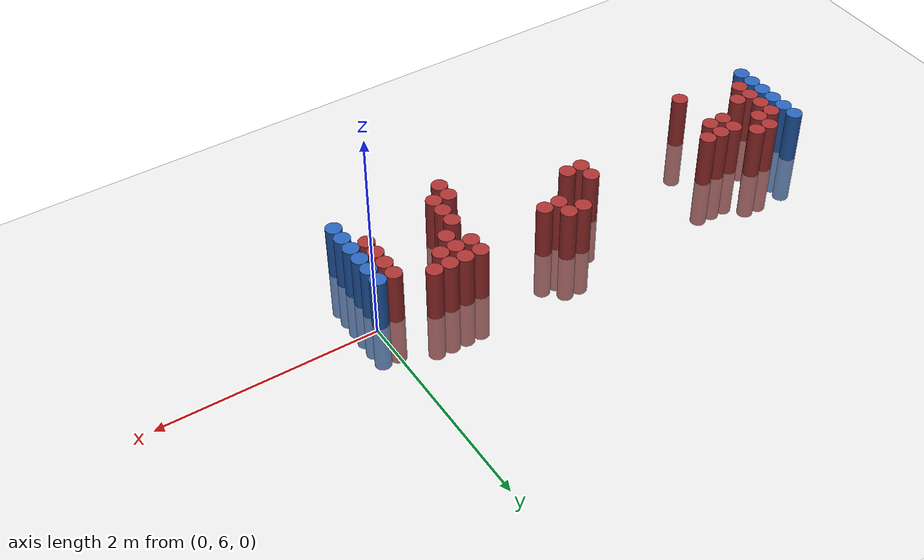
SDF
<sdf version="1.6">
 <world name="default">
  <model name="ground_plane">
   <static>1</static>
   <link name="link">
    <collision name="collision">
     <geometry><plane><normal>0 0 1</normal><size>100 100</size></plane></geometry>
     <surface><friction><ode><mu>100</mu><mu2>50</mu2></ode></friction></surface>
    </collision>
    <visual name="visual">
     <cast_shadows>0</cast_shadows>
     <geometry><plane><normal>0 0 1</normal><size>100 100</size></plane></geometry>
     <material>
      <script><uri>file://media/materials/scripts/gazebo.material</uri><name>Gazebo/Grey</name></script>
     </material>
    </visual>
   </link>
  </model>
  <model name="unit_cylinder_97">
   <static>1</static>
   <pose>-4.425000 5.325000 0.000000 0.000000 0.000000 0.000000</pose>
   <link name="link">
    <inertial>
     <mass>1</mass>
     <inertia><ixx>0.145833</ixx><ixy>0</ixy><ixz>0</ixz><iyy>0.145833</iyy><iyz>0</iyz><izz>0.125</izz></inertia>
    </inertial>
    <collision name="collision">
     <geometry><cylinder><radius>0.075000</radius><length>1</length></cylinder></geometry>
    </collision>
    <visual name="visual">
     <geometry><cylinder><radius>0.075000</radius><length>1</length></cylinder></geometry>
     <material>
      <ambient>0.152000 0.379000 0.720000 1</ambient>
      <diffuse>0.152000 0.379000 0.720000 1</diffuse>
     </material>
     <material>
      <script><name>Gazebo/Grey</name><uri>file://media/materials/scripts/gazebo.material</uri></script>
     </material>
    </visual>
   </link>
  </model>
  <model name="unit_cylinder_98">
   <static>1</static>
   <pose>-4.425000 5.475000 0.000000 0.000000 0.000000 0.000000</pose>
   <link name="link">
    <inertial>
     <mass>1</mass>
     <inertia><ixx>0.145833</ixx><ixy>0</ixy><ixz>0</ixz><iyy>0.145833</iyy><iyz>0</iyz><izz>0.125</izz></inertia>
    </inertial>
    <collision name="collision">
     <geometry><cylinder><radius>0.075000</radius><length>1</length></cylinder></geometry>
    </collision>
    <visual name="visual">
     <geometry><cylinder><radius>0.075000</radius><length>1</length></cylinder></geometry>
     <material>
      <ambient>0.152000 0.379000 0.720000 1</ambient>
      <diffuse>0.152000 0.379000 0.720000 1</diffuse>
     </material>
     <material>
      <script><name>Gazebo/Grey</name><uri>file://media/materials/scripts/gazebo.material</uri></script>
     </material>
    </visual>
   </link>
  </model>
  <model name="unit_cylinder_99">
   <static>1</static>
   <pose>-4.425000 5.625000 0.000000 0.000000 0.000000 0.000000</pose>
   <link name="link">
    <inertial>
     <mass>1</mass>
     <inertia><ixx>0.145833</ixx><ixy>0</ixy><ixz>0</ixz><iyy>0.145833</iyy><iyz>0</iyz><izz>0.125</izz></inertia>
    </inertial>
    <collision name="collision">
     <geometry><cylinder><radius>0.075000</radius><length>1</length></cylinder></geometry>
    </collision>
    <visual name="visual">
     <geometry><cylinder><radius>0.075000</radius><length>1</length></cylinder></geometry>
     <material>
      <ambient>0.152000 0.379000 0.720000 1</ambient>
      <diffuse>0.152000 0.379000 0.720000 1</diffuse>
     </material>
     <material>
      <script><name>Gazebo/Grey</name><uri>file://media/materials/scripts/gazebo.material</uri></script>
     </material>
    </visual>
   </link>
  </model>
  <model name="unit_cylinder_100">
   <static>1</static>
   <pose>-4.425000 5.775000 0.000000 0.000000 0.000000 0.000000</pose>
   <link name="link">
    <inertial>
     <mass>1</mass>
     <inertia><ixx>0.145833</ixx><ixy>0</ixy><ixz>0</ixz><iyy>0.145833</iyy><iyz>0</iyz><izz>0.125</izz></inertia>
    </inertial>
    <collision name="collision">
     <geometry><cylinder><radius>0.075000</radius><length>1</length></cylinder></geometry>
    </collision>
    <visual name="visual">
     <geometry><cylinder><radius>0.075000</radius><length>1</length></cylinder></geometry>
     <material>
      <ambient>0.152000 0.379000 0.720000 1</ambient>
      <diffuse>0.152000 0.379000 0.720000 1</diffuse>
     </material>
     <material>
      <script><name>Gazebo/Grey</name><uri>file://media/materials/scripts/gazebo.material</uri></script>
     </material>
    </visual>
   </link>
  </model>
  <model name="unit_cylinder_101">
   <static>1</static>
   <pose>-4.425000 5.925000 0.000000 0.000000 0.000000 0.000000</pose>
   <link name="link">
    <inertial>
     <mass>1</mass>
     <inertia><ixx>0.145833</ixx><ixy>0</ixy><ixz>0</ixz><iyy>0.145833</iyy><iyz>0</iyz><izz>0.125</izz></inertia>
    </inertial>
    <collision name="collision">
     <geometry><cylinder><radius>0.075000</radius><length>1</length></cylinder></geometry>
    </collision>
    <visual name="visual">
     <geometry><cylinder><radius>0.075000</radius><length>1</length></cylinder></geometry>
     <material>
      <ambient>0.152000 0.379000 0.720000 1</ambient>
      <diffuse>0.152000 0.379000 0.720000 1</diffuse>
     </material>
     <material>
      <script><name>Gazebo/Grey</name><uri>file://media/materials/scripts/gazebo.material</uri></script>
     </material>
    </visual>
   </link>
  </model>
  <model name="unit_cylinder_102">
   <static>1</static>
   <pose>-4.425000 6.075000 0.000000 0.000000 0.000000 0.000000</pose>
   <link name="link">
    <inertial>
     <mass>1</mass>
     <inertia><ixx>0.145833</ixx><ixy>0</ixy><ixz>0</ixz><iyy>0.145833</iyy><iyz>0</iyz><izz>0.125</izz></inertia>
    </inertial>
    <collision name="collision">
     <geometry><cylinder><radius>0.075000</radius><length>1</length></cylinder></geometry>
    </collision>
    <visual name="visual">
     <geometry><cylinder><radius>0.075000</radius><length>1</length></cylinder></geometry>
     <material>
      <ambient>0.152000 0.379000 0.720000 1</ambient>
      <diffuse>0.152000 0.379000 0.720000 1</diffuse>
     </material>
     <material>
      <script><name>Gazebo/Grey</name><uri>file://media/materials/scripts/gazebo.material</uri></script>
     </material>
    </visual>
   </link>
  </model>
  <model name="unit_cylinder_126">
   <static>1</static>
   <pose>-4.275000 5.475000 0.000000 0.000000 0.000000 0.000000</pose>
   <link name="link">
    <inertial>
     <mass>1</mass>
     <inertia><ixx>0.145833</ixx><ixy>0</ixy><ixz>0</ixz><iyy>0.145833</iyy><iyz>0</iyz><izz>0.125</izz></inertia>
    </inertial>
    <collision name="collision">
     <geometry><cylinder><radius>0.075000</radius><length>1</length></cylinder></geometry>
    </collision>
    <visual name="visual">
     <geometry><cylinder><radius>0.075000</radius><length>1</length></cylinder></geometry>
     <material>
      <ambient>0.648000 0.192000 0.192000 1</ambient>
      <diffuse>0.648000 0.192000 0.192000 1</diffuse>
     </material>
     <material>
      <script><name>Gazebo/Grey</name><uri>file://media/materials/scripts/gazebo.material</uri></script>
     </material>
    </visual>
   </link>
  </model>
  <model name="unit_cylinder_127">
   <static>1</static>
   <pose>-4.275000 5.625000 0.000000 0.000000 0.000000 0.000000</pose>
   <link name="link">
    <inertial>
     <mass>1</mass>
     <inertia><ixx>0.145833</ixx><ixy>0</ixy><ixz>0</ixz><iyy>0.145833</iyy><iyz>0</iyz><izz>0.125</izz></inertia>
    </inertial>
    <collision name="collision">
     <geometry><cylinder><radius>0.075000</radius><length>1</length></cylinder></geometry>
    </collision>
    <visual name="visual">
     <geometry><cylinder><radius>0.075000</radius><length>1</length></cylinder></geometry>
     <material>
      <ambient>0.648000 0.192000 0.192000 1</ambient>
      <diffuse>0.648000 0.192000 0.192000 1</diffuse>
     </material>
     <material>
      <script><name>Gazebo/Grey</name><uri>file://media/materials/scripts/gazebo.material</uri></script>
     </material>
    </visual>
   </link>
  </model>
  <model name="unit_cylinder_128">
   <static>1</static>
   <pose>-4.275000 5.775000 0.000000 0.000000 0.000000 0.000000</pose>
   <link name="link">
    <inertial>
     <mass>1</mass>
     <inertia><ixx>0.145833</ixx><ixy>0</ixy><ixz>0</ixz><iyy>0.145833</iyy><iyz>0</iyz><izz>0.125</izz></inertia>
    </inertial>
    <collision name="collision">
     <geometry><cylinder><radius>0.075000</radius><length>1</length></cylinder></geometry>
    </collision>
    <visual name="visual">
     <geometry><cylinder><radius>0.075000</radius><length>1</length></cylinder></geometry>
     <material>
      <ambient>0.648000 0.192000 0.192000 1</ambient>
      <diffuse>0.648000 0.192000 0.192000 1</diffuse>
     </material>
     <material>
      <script><name>Gazebo/Grey</name><uri>file://media/materials/scripts/gazebo.material</uri></script>
     </material>
    </visual>
   </link>
  </model>
  <model name="unit_cylinder_129">
   <static>1</static>
   <pose>-4.275000 5.925000 0.000000 0.000000 0.000000 0.000000</pose>
   <link name="link">
    <inertial>
     <mass>1</mass>
     <inertia><ixx>0.145833</ixx><ixy>0</ixy><ixz>0</ixz><iyy>0.145833</iyy><iyz>0</iyz><izz>0.125</izz></inertia>
    </inertial>
    <collision name="collision">
     <geometry><cylinder><radius>0.075000</radius><length>1</length></cylinder></geometry>
    </collision>
    <visual name="visual">
     <geometry><cylinder><radius>0.075000</radius><length>1</length></cylinder></geometry>
     <material>
      <ambient>0.648000 0.192000 0.192000 1</ambient>
      <diffuse>0.648000 0.192000 0.192000 1</diffuse>
     </material>
     <material>
      <script><name>Gazebo/Grey</name><uri>file://media/materials/scripts/gazebo.material</uri></script>
     </material>
    </visual>
   </link>
  </model>
  <model name="unit_cylinder_137">
   <static>1</static>
   <pose>-4.125000 5.625000 0.000000 0.000000 0.000000 0.000000</pose>
   <link name="link">
    <inertial>
     <mass>1</mass>
     <inertia><ixx>0.145833</ixx><ixy>0</ixy><ixz>0</ixz><iyy>0.145833</iyy><iyz>0</iyz><izz>0.125</izz></inertia>
    </inertial>
    <collision name="collision">
     <geometry><cylinder><radius>0.075000</radius><length>1</length></cylinder></geometry>
    </collision>
    <visual name="visual">
     <geometry><cylinder><radius>0.075000</radius><length>1</length></cylinder></geometry>
     <material>
      <ambient>0.648000 0.192000 0.192000 1</ambient>
      <diffuse>0.648000 0.192000 0.192000 1</diffuse>
     </material>
     <material>
      <script><name>Gazebo/Grey</name><uri>file://media/materials/scripts/gazebo.material</uri></script>
     </material>
    </visual>
   </link>
  </model>
  <model name="unit_cylinder_138">
   <static>1</static>
   <pose>-4.125000 5.925000 0.000000 0.000000 0.000000 0.000000</pose>
   <link name="link">
    <inertial>
     <mass>1</mass>
     <inertia><ixx>0.145833</ixx><ixy>0</ixy><ixz>0</ixz><iyy>0.145833</iyy><iyz>0</iyz><izz>0.125</izz></inertia>
    </inertial>
    <collision name="collision">
     <geometry><cylinder><radius>0.075000</radius><length>1</length></cylinder></geometry>
    </collision>
    <visual name="visual">
     <geometry><cylinder><radius>0.075000</radius><length>1</length></cylinder></geometry>
     <material>
      <ambient>0.648000 0.192000 0.192000 1</ambient>
      <diffuse>0.648000 0.192000 0.192000 1</diffuse>
     </material>
     <material>
      <script><name>Gazebo/Grey</name><uri>file://media/materials/scripts/gazebo.material</uri></script>
     </material>
    </visual>
   </link>
  </model>
  <model name="unit_cylinder_139">
   <static>1</static>
   <pose>-4.125000 6.075000 0.000000 0.000000 0.000000 0.000000</pose>
   <link name="link">
    <inertial>
     <mass>1</mass>
     <inertia><ixx>0.145833</ixx><ixy>0</ixy><ixz>0</ixz><iyy>0.145833</iyy><iyz>0</iyz><izz>0.125</izz></inertia>
    </inertial>
    <collision name="collision">
     <geometry><cylinder><radius>0.075000</radius><length>1</length></cylinder></geometry>
    </collision>
    <visual name="visual">
     <geometry><cylinder><radius>0.075000</radius><length>1</length></cylinder></geometry>
     <material>
      <ambient>0.648000 0.192000 0.192000 1</ambient>
      <diffuse>0.648000 0.192000 0.192000 1</diffuse>
     </material>
     <material>
      <script><name>Gazebo/Grey</name><uri>file://media/materials/scripts/gazebo.material</uri></script>
     </material>
    </visual>
   </link>
  </model>
  <model name="unit_cylinder_144">
   <static>1</static>
   <pose>-3.975000 6.075000 0.000000 0.000000 0.000000 0.000000</pose>
   <link name="link">
    <inertial>
     <mass>1</mass>
     <inertia><ixx>0.145833</ixx><ixy>0</ixy><ixz>0</ixz><iyy>0.145833</iyy><iyz>0</iyz><izz>0.125</izz></inertia>
    </inertial>
    <collision name="collision">
     <geometry><cylinder><radius>0.075000</radius><length>1</length></cylinder></geometry>
    </collision>
    <visual name="visual">
     <geometry><cylinder><radius>0.075000</radius><length>1</length></cylinder></geometry>
     <material>
      <ambient>0.648000 0.192000 0.192000 1</ambient>
      <diffuse>0.648000 0.192000 0.192000 1</diffuse>
     </material>
     <material>
      <script><name>Gazebo/Grey</name><uri>file://media/materials/scripts/gazebo.material</uri></script>
     </material>
    </visual>
   </link>
  </model>
  <model name="unit_cylinder_150">
   <static>1</static>
   <pose>-3.825000 5.775000 0.000000 0.000000 0.000000 0.000000</pose>
   <link name="link">
    <inertial>
     <mass>1</mass>
     <inertia><ixx>0.145833</ixx><ixy>0</ixy><ixz>0</ixz><iyy>0.145833</iyy><iyz>0</iyz><izz>0.125</izz></inertia>
    </inertial>
    <collision name="collision">
     <geometry><cylinder><radius>0.075000</radius><length>1</length></cylinder></geometry>
    </collision>
    <visual name="visual">
     <geometry><cylinder><radius>0.075000</radius><length>1</length></cylinder></geometry>
     <material>
      <ambient>0.648000 0.192000 0.192000 1</ambient>
      <diffuse>0.648000 0.192000 0.192000 1</diffuse>
     </material>
     <material>
      <script><name>Gazebo/Grey</name><uri>file://media/materials/scripts/gazebo.material</uri></script>
     </material>
    </visual>
   </link>
  </model>
  <model name="unit_cylinder_151">
   <static>1</static>
   <pose>-3.825000 5.925000 0.000000 0.000000 0.000000 0.000000</pose>
   <link name="link">
    <inertial>
     <mass>1</mass>
     <inertia><ixx>0.145833</ixx><ixy>0</ixy><ixz>0</ixz><iyy>0.145833</iyy><iyz>0</iyz><izz>0.125</izz></inertia>
    </inertial>
    <collision name="collision">
     <geometry><cylinder><radius>0.075000</radius><length>1</length></cylinder></geometry>
    </collision>
    <visual name="visual">
     <geometry><cylinder><radius>0.075000</radius><length>1</length></cylinder></geometry>
     <material>
      <ambient>0.648000 0.192000 0.192000 1</ambient>
      <diffuse>0.648000 0.192000 0.192000 1</diffuse>
     </material>
     <material>
      <script><name>Gazebo/Grey</name><uri>file://media/materials/scripts/gazebo.material</uri></script>
     </material>
    </visual>
   </link>
  </model>
  <model name="unit_cylinder_161">
   <static>1</static>
   <pose>-3.675000 5.325000 0.000000 0.000000 0.000000 0.000000</pose>
   <link name="link">
    <inertial>
     <mass>1</mass>
     <inertia><ixx>0.145833</ixx><ixy>0</ixy><ixz>0</ixz><iyy>0.145833</iyy><iyz>0</iyz><izz>0.125</izz></inertia>
    </inertial>
    <collision name="collision">
     <geometry><cylinder><radius>0.075000</radius><length>1</length></cylinder></geometry>
    </collision>
    <visual name="visual">
     <geometry><cylinder><radius>0.075000</radius><length>1</length></cylinder></geometry>
     <material>
      <ambient>0.648000 0.192000 0.192000 1</ambient>
      <diffuse>0.648000 0.192000 0.192000 1</diffuse>
     </material>
     <material>
      <script><name>Gazebo/Grey</name><uri>file://media/materials/scripts/gazebo.material</uri></script>
     </material>
    </visual>
   </link>
  </model>
  <model name="unit_cylinder_162">
   <static>1</static>
   <pose>-3.675000 5.775000 0.000000 0.000000 0.000000 0.000000</pose>
   <link name="link">
    <inertial>
     <mass>1</mass>
     <inertia><ixx>0.145833</ixx><ixy>0</ixy><ixz>0</ixz><iyy>0.145833</iyy><iyz>0</iyz><izz>0.125</izz></inertia>
    </inertial>
    <collision name="collision">
     <geometry><cylinder><radius>0.075000</radius><length>1</length></cylinder></geometry>
    </collision>
    <visual name="visual">
     <geometry><cylinder><radius>0.075000</radius><length>1</length></cylinder></geometry>
     <material>
      <ambient>0.648000 0.192000 0.192000 1</ambient>
      <diffuse>0.648000 0.192000 0.192000 1</diffuse>
     </material>
     <material>
      <script><name>Gazebo/Grey</name><uri>file://media/materials/scripts/gazebo.material</uri></script>
     </material>
    </visual>
   </link>
  </model>
  <model name="unit_cylinder_163">
   <static>1</static>
   <pose>-3.675000 5.925000 0.000000 0.000000 0.000000 0.000000</pose>
   <link name="link">
    <inertial>
     <mass>1</mass>
     <inertia><ixx>0.145833</ixx><ixy>0</ixy><ixz>0</ixz><iyy>0.145833</iyy><iyz>0</iyz><izz>0.125</izz></inertia>
    </inertial>
    <collision name="collision">
     <geometry><cylinder><radius>0.075000</radius><length>1</length></cylinder></geometry>
    </collision>
    <visual name="visual">
     <geometry><cylinder><radius>0.075000</radius><length>1</length></cylinder></geometry>
     <material>
      <ambient>0.648000 0.192000 0.192000 1</ambient>
      <diffuse>0.648000 0.192000 0.192000 1</diffuse>
     </material>
     <material>
      <script><name>Gazebo/Grey</name><uri>file://media/materials/scripts/gazebo.material</uri></script>
     </material>
    </visual>
   </link>
  </model>
  <model name="unit_cylinder_170">
   <static>1</static>
   <pose>-3.525000 5.925000 0.000000 0.000000 0.000000 0.000000</pose>
   <link name="link">
    <inertial>
     <mass>1</mass>
     <inertia><ixx>0.145833</ixx><ixy>0</ixy><ixz>0</ixz><iyy>0.145833</iyy><iyz>0</iyz><izz>0.125</izz></inertia>
    </inertial>
    <collision name="collision">
     <geometry><cylinder><radius>0.075000</radius><length>1</length></cylinder></geometry>
    </collision>
    <visual name="visual">
     <geometry><cylinder><radius>0.075000</radius><length>1</length></cylinder></geometry>
     <material>
      <ambient>0.648000 0.192000 0.192000 1</ambient>
      <diffuse>0.648000 0.192000 0.192000 1</diffuse>
     </material>
     <material>
      <script><name>Gazebo/Grey</name><uri>file://media/materials/scripts/gazebo.material</uri></script>
     </material>
    </visual>
   </link>
  </model>
  <model name="unit_cylinder_202">
   <static>1</static>
   <pose>-2.325000 5.625000 0.000000 0.000000 0.000000 0.000000</pose>
   <link name="link">
    <inertial>
     <mass>1</mass>
     <inertia><ixx>0.145833</ixx><ixy>0</ixy><ixz>0</ixz><iyy>0.145833</iyy><iyz>0</iyz><izz>0.125</izz></inertia>
    </inertial>
    <collision name="collision">
     <geometry><cylinder><radius>0.075000</radius><length>1</length></cylinder></geometry>
    </collision>
    <visual name="visual">
     <geometry><cylinder><radius>0.075000</radius><length>1</length></cylinder></geometry>
     <material>
      <ambient>0.648000 0.192000 0.192000 1</ambient>
      <diffuse>0.648000 0.192000 0.192000 1</diffuse>
     </material>
     <material>
      <script><name>Gazebo/Grey</name><uri>file://media/materials/scripts/gazebo.material</uri></script>
     </material>
    </visual>
   </link>
  </model>
  <model name="unit_cylinder_203">
   <static>1</static>
   <pose>-2.325000 5.775000 0.000000 0.000000 0.000000 0.000000</pose>
   <link name="link">
    <inertial>
     <mass>1</mass>
     <inertia><ixx>0.145833</ixx><ixy>0</ixy><ixz>0</ixz><iyy>0.145833</iyy><iyz>0</iyz><izz>0.125</izz></inertia>
    </inertial>
    <collision name="collision">
     <geometry><cylinder><radius>0.075000</radius><length>1</length></cylinder></geometry>
    </collision>
    <visual name="visual">
     <geometry><cylinder><radius>0.075000</radius><length>1</length></cylinder></geometry>
     <material>
      <ambient>0.648000 0.192000 0.192000 1</ambient>
      <diffuse>0.648000 0.192000 0.192000 1</diffuse>
     </material>
     <material>
      <script><name>Gazebo/Grey</name><uri>file://media/materials/scripts/gazebo.material</uri></script>
     </material>
    </visual>
   </link>
  </model>
  <model name="unit_cylinder_206">
   <static>1</static>
   <pose>-2.175000 5.625000 0.000000 0.000000 0.000000 0.000000</pose>
   <link name="link">
    <inertial>
     <mass>1</mass>
     <inertia><ixx>0.145833</ixx><ixy>0</ixy><ixz>0</ixz><iyy>0.145833</iyy><iyz>0</iyz><izz>0.125</izz></inertia>
    </inertial>
    <collision name="collision">
     <geometry><cylinder><radius>0.075000</radius><length>1</length></cylinder></geometry>
    </collision>
    <visual name="visual">
     <geometry><cylinder><radius>0.075000</radius><length>1</length></cylinder></geometry>
     <material>
      <ambient>0.648000 0.192000 0.192000 1</ambient>
      <diffuse>0.648000 0.192000 0.192000 1</diffuse>
     </material>
     <material>
      <script><name>Gazebo/Grey</name><uri>file://media/materials/scripts/gazebo.material</uri></script>
     </material>
    </visual>
   </link>
  </model>
  <model name="unit_cylinder_209">
   <static>1</static>
   <pose>-2.025000 6.075000 0.000000 0.000000 0.000000 0.000000</pose>
   <link name="link">
    <inertial>
     <mass>1</mass>
     <inertia><ixx>0.145833</ixx><ixy>0</ixy><ixz>0</ixz><iyy>0.145833</iyy><iyz>0</iyz><izz>0.125</izz></inertia>
    </inertial>
    <collision name="collision">
     <geometry><cylinder><radius>0.075000</radius><length>1</length></cylinder></geometry>
    </collision>
    <visual name="visual">
     <geometry><cylinder><radius>0.075000</radius><length>1</length></cylinder></geometry>
     <material>
      <ambient>0.648000 0.192000 0.192000 1</ambient>
      <diffuse>0.648000 0.192000 0.192000 1</diffuse>
     </material>
     <material>
      <script><name>Gazebo/Grey</name><uri>file://media/materials/scripts/gazebo.material</uri></script>
     </material>
    </visual>
   </link>
  </model>
  <model name="unit_cylinder_212">
   <static>1</static>
   <pose>-1.875000 5.925000 0.000000 0.000000 0.000000 0.000000</pose>
   <link name="link">
    <inertial>
     <mass>1</mass>
     <inertia><ixx>0.145833</ixx><ixy>0</ixy><ixz>0</ixz><iyy>0.145833</iyy><iyz>0</iyz><izz>0.125</izz></inertia>
    </inertial>
    <collision name="collision">
     <geometry><cylinder><radius>0.075000</radius><length>1</length></cylinder></geometry>
    </collision>
    <visual name="visual">
     <geometry><cylinder><radius>0.075000</radius><length>1</length></cylinder></geometry>
     <material>
      <ambient>0.648000 0.192000 0.192000 1</ambient>
      <diffuse>0.648000 0.192000 0.192000 1</diffuse>
     </material>
     <material>
      <script><name>Gazebo/Grey</name><uri>file://media/materials/scripts/gazebo.material</uri></script>
     </material>
    </visual>
   </link>
  </model>
  <model name="unit_cylinder_213">
   <static>1</static>
   <pose>-1.875000 6.075000 0.000000 0.000000 0.000000 0.000000</pose>
   <link name="link">
    <inertial>
     <mass>1</mass>
     <inertia><ixx>0.145833</ixx><ixy>0</ixy><ixz>0</ixz><iyy>0.145833</iyy><iyz>0</iyz><izz>0.125</izz></inertia>
    </inertial>
    <collision name="collision">
     <geometry><cylinder><radius>0.075000</radius><length>1</length></cylinder></geometry>
    </collision>
    <visual name="visual">
     <geometry><cylinder><radius>0.075000</radius><length>1</length></cylinder></geometry>
     <material>
      <ambient>0.648000 0.192000 0.192000 1</ambient>
      <diffuse>0.648000 0.192000 0.192000 1</diffuse>
     </material>
     <material>
      <script><name>Gazebo/Grey</name><uri>file://media/materials/scripts/gazebo.material</uri></script>
     </material>
    </visual>
   </link>
  </model>
  <model name="unit_cylinder_215">
   <static>1</static>
   <pose>-1.725000 5.925000 0.000000 0.000000 0.000000 0.000000</pose>
   <link name="link">
    <inertial>
     <mass>1</mass>
     <inertia><ixx>0.145833</ixx><ixy>0</ixy><ixz>0</ixz><iyy>0.145833</iyy><iyz>0</iyz><izz>0.125</izz></inertia>
    </inertial>
    <collision name="collision">
     <geometry><cylinder><radius>0.075000</radius><length>1</length></cylinder></geometry>
    </collision>
    <visual name="visual">
     <geometry><cylinder><radius>0.075000</radius><length>1</length></cylinder></geometry>
     <material>
      <ambient>0.648000 0.192000 0.192000 1</ambient>
      <diffuse>0.648000 0.192000 0.192000 1</diffuse>
     </material>
     <material>
      <script><name>Gazebo/Grey</name><uri>file://media/materials/scripts/gazebo.material</uri></script>
     </material>
    </visual>
   </link>
  </model>
  <model name="unit_cylinder_246">
   <static>1</static>
   <pose>-1.125000 5.175000 0.000000 0.000000 0.000000 0.000000</pose>
   <link name="link">
    <inertial>
     <mass>1</mass>
     <inertia><ixx>0.145833</ixx><ixy>0</ixy><ixz>0</ixz><iyy>0.145833</iyy><iyz>0</iyz><izz>0.125</izz></inertia>
    </inertial>
    <collision name="collision">
     <geometry><cylinder><radius>0.075000</radius><length>1</length></cylinder></geometry>
    </collision>
    <visual name="visual">
     <geometry><cylinder><radius>0.075000</radius><length>1</length></cylinder></geometry>
     <material>
      <ambient>0.648000 0.192000 0.192000 1</ambient>
      <diffuse>0.648000 0.192000 0.192000 1</diffuse>
     </material>
     <material>
      <script><name>Gazebo/Grey</name><uri>file://media/materials/scripts/gazebo.material</uri></script>
     </material>
    </visual>
   </link>
  </model>
  <model name="unit_cylinder_247">
   <static>1</static>
   <pose>-1.125000 5.325000 0.000000 0.000000 0.000000 0.000000</pose>
   <link name="link">
    <inertial>
     <mass>1</mass>
     <inertia><ixx>0.145833</ixx><ixy>0</ixy><ixz>0</ixz><iyy>0.145833</iyy><iyz>0</iyz><izz>0.125</izz></inertia>
    </inertial>
    <collision name="collision">
     <geometry><cylinder><radius>0.075000</radius><length>1</length></cylinder></geometry>
    </collision>
    <visual name="visual">
     <geometry><cylinder><radius>0.075000</radius><length>1</length></cylinder></geometry>
     <material>
      <ambient>0.648000 0.192000 0.192000 1</ambient>
      <diffuse>0.648000 0.192000 0.192000 1</diffuse>
     </material>
     <material>
      <script><name>Gazebo/Grey</name><uri>file://media/materials/scripts/gazebo.material</uri></script>
     </material>
    </visual>
   </link>
  </model>
  <model name="unit_cylinder_257">
   <static>1</static>
   <pose>-0.975000 5.325000 0.000000 0.000000 0.000000 0.000000</pose>
   <link name="link">
    <inertial>
     <mass>1</mass>
     <inertia><ixx>0.145833</ixx><ixy>0</ixy><ixz>0</ixz><iyy>0.145833</iyy><iyz>0</iyz><izz>0.125</izz></inertia>
    </inertial>
    <collision name="collision">
     <geometry><cylinder><radius>0.075000</radius><length>1</length></cylinder></geometry>
    </collision>
    <visual name="visual">
     <geometry><cylinder><radius>0.075000</radius><length>1</length></cylinder></geometry>
     <material>
      <ambient>0.648000 0.192000 0.192000 1</ambient>
      <diffuse>0.648000 0.192000 0.192000 1</diffuse>
     </material>
     <material>
      <script><name>Gazebo/Grey</name><uri>file://media/materials/scripts/gazebo.material</uri></script>
     </material>
    </visual>
   </link>
  </model>
  <model name="unit_cylinder_258">
   <static>1</static>
   <pose>-0.975000 5.475000 0.000000 0.000000 0.000000 0.000000</pose>
   <link name="link">
    <inertial>
     <mass>1</mass>
     <inertia><ixx>0.145833</ixx><ixy>0</ixy><ixz>0</ixz><iyy>0.145833</iyy><iyz>0</iyz><izz>0.125</izz></inertia>
    </inertial>
    <collision name="collision">
     <geometry><cylinder><radius>0.075000</radius><length>1</length></cylinder></geometry>
    </collision>
    <visual name="visual">
     <geometry><cylinder><radius>0.075000</radius><length>1</length></cylinder></geometry>
     <material>
      <ambient>0.648000 0.192000 0.192000 1</ambient>
      <diffuse>0.648000 0.192000 0.192000 1</diffuse>
     </material>
     <material>
      <script><name>Gazebo/Grey</name><uri>file://media/materials/scripts/gazebo.material</uri></script>
     </material>
    </visual>
   </link>
  </model>
  <model name="unit_cylinder_259">
   <static>1</static>
   <pose>-0.975000 5.625000 0.000000 0.000000 0.000000 0.000000</pose>
   <link name="link">
    <inertial>
     <mass>1</mass>
     <inertia><ixx>0.145833</ixx><ixy>0</ixy><ixz>0</ixz><iyy>0.145833</iyy><iyz>0</iyz><izz>0.125</izz></inertia>
    </inertial>
    <collision name="collision">
     <geometry><cylinder><radius>0.075000</radius><length>1</length></cylinder></geometry>
    </collision>
    <visual name="visual">
     <geometry><cylinder><radius>0.075000</radius><length>1</length></cylinder></geometry>
     <material>
      <ambient>0.648000 0.192000 0.192000 1</ambient>
      <diffuse>0.648000 0.192000 0.192000 1</diffuse>
     </material>
     <material>
      <script><name>Gazebo/Grey</name><uri>file://media/materials/scripts/gazebo.material</uri></script>
     </material>
    </visual>
   </link>
  </model>
  <model name="unit_cylinder_260">
   <static>1</static>
   <pose>-0.975000 5.925000 0.000000 0.000000 0.000000 0.000000</pose>
   <link name="link">
    <inertial>
     <mass>1</mass>
     <inertia><ixx>0.145833</ixx><ixy>0</ixy><ixz>0</ixz><iyy>0.145833</iyy><iyz>0</iyz><izz>0.125</izz></inertia>
    </inertial>
    <collision name="collision">
     <geometry><cylinder><radius>0.075000</radius><length>1</length></cylinder></geometry>
    </collision>
    <visual name="visual">
     <geometry><cylinder><radius>0.075000</radius><length>1</length></cylinder></geometry>
     <material>
      <ambient>0.648000 0.192000 0.192000 1</ambient>
      <diffuse>0.648000 0.192000 0.192000 1</diffuse>
     </material>
     <material>
      <script><name>Gazebo/Grey</name><uri>file://media/materials/scripts/gazebo.material</uri></script>
     </material>
    </visual>
   </link>
  </model>
  <model name="unit_cylinder_261">
   <static>1</static>
   <pose>-0.975000 6.075000 0.000000 0.000000 0.000000 0.000000</pose>
   <link name="link">
    <inertial>
     <mass>1</mass>
     <inertia><ixx>0.145833</ixx><ixy>0</ixy><ixz>0</ixz><iyy>0.145833</iyy><iyz>0</iyz><izz>0.125</izz></inertia>
    </inertial>
    <collision name="collision">
     <geometry><cylinder><radius>0.075000</radius><length>1</length></cylinder></geometry>
    </collision>
    <visual name="visual">
     <geometry><cylinder><radius>0.075000</radius><length>1</length></cylinder></geometry>
     <material>
      <ambient>0.648000 0.192000 0.192000 1</ambient>
      <diffuse>0.648000 0.192000 0.192000 1</diffuse>
     </material>
     <material>
      <script><name>Gazebo/Grey</name><uri>file://media/materials/scripts/gazebo.material</uri></script>
     </material>
    </visual>
   </link>
  </model>
  <model name="unit_cylinder_271">
   <static>1</static>
   <pose>-0.825000 5.775000 0.000000 0.000000 0.000000 0.000000</pose>
   <link name="link">
    <inertial>
     <mass>1</mass>
     <inertia><ixx>0.145833</ixx><ixy>0</ixy><ixz>0</ixz><iyy>0.145833</iyy><iyz>0</iyz><izz>0.125</izz></inertia>
    </inertial>
    <collision name="collision">
     <geometry><cylinder><radius>0.075000</radius><length>1</length></cylinder></geometry>
    </collision>
    <visual name="visual">
     <geometry><cylinder><radius>0.075000</radius><length>1</length></cylinder></geometry>
     <material>
      <ambient>0.648000 0.192000 0.192000 1</ambient>
      <diffuse>0.648000 0.192000 0.192000 1</diffuse>
     </material>
     <material>
      <script><name>Gazebo/Grey</name><uri>file://media/materials/scripts/gazebo.material</uri></script>
     </material>
    </visual>
   </link>
  </model>
  <model name="unit_cylinder_272">
   <static>1</static>
   <pose>-0.825000 5.925000 0.000000 0.000000 0.000000 0.000000</pose>
   <link name="link">
    <inertial>
     <mass>1</mass>
     <inertia><ixx>0.145833</ixx><ixy>0</ixy><ixz>0</ixz><iyy>0.145833</iyy><iyz>0</iyz><izz>0.125</izz></inertia>
    </inertial>
    <collision name="collision">
     <geometry><cylinder><radius>0.075000</radius><length>1</length></cylinder></geometry>
    </collision>
    <visual name="visual">
     <geometry><cylinder><radius>0.075000</radius><length>1</length></cylinder></geometry>
     <material>
      <ambient>0.648000 0.192000 0.192000 1</ambient>
      <diffuse>0.648000 0.192000 0.192000 1</diffuse>
     </material>
     <material>
      <script><name>Gazebo/Grey</name><uri>file://media/materials/scripts/gazebo.material</uri></script>
     </material>
    </visual>
   </link>
  </model>
  <model name="unit_cylinder_273">
   <static>1</static>
   <pose>-0.825000 6.075000 0.000000 0.000000 0.000000 0.000000</pose>
   <link name="link">
    <inertial>
     <mass>1</mass>
     <inertia><ixx>0.145833</ixx><ixy>0</ixy><ixz>0</ixz><iyy>0.145833</iyy><iyz>0</iyz><izz>0.125</izz></inertia>
    </inertial>
    <collision name="collision">
     <geometry><cylinder><radius>0.075000</radius><length>1</length></cylinder></geometry>
    </collision>
    <visual name="visual">
     <geometry><cylinder><radius>0.075000</radius><length>1</length></cylinder></geometry>
     <material>
      <ambient>0.648000 0.192000 0.192000 1</ambient>
      <diffuse>0.648000 0.192000 0.192000 1</diffuse>
     </material>
     <material>
      <script><name>Gazebo/Grey</name><uri>file://media/materials/scripts/gazebo.material</uri></script>
     </material>
    </visual>
   </link>
  </model>
  <model name="unit_cylinder_281">
   <static>1</static>
   <pose>-0.675000 5.925000 0.000000 0.000000 0.000000 0.000000</pose>
   <link name="link">
    <inertial>
     <mass>1</mass>
     <inertia><ixx>0.145833</ixx><ixy>0</ixy><ixz>0</ixz><iyy>0.145833</iyy><iyz>0</iyz><izz>0.125</izz></inertia>
    </inertial>
    <collision name="collision">
     <geometry><cylinder><radius>0.075000</radius><length>1</length></cylinder></geometry>
    </collision>
    <visual name="visual">
     <geometry><cylinder><radius>0.075000</radius><length>1</length></cylinder></geometry>
     <material>
      <ambient>0.648000 0.192000 0.192000 1</ambient>
      <diffuse>0.648000 0.192000 0.192000 1</diffuse>
     </material>
     <material>
      <script><name>Gazebo/Grey</name><uri>file://media/materials/scripts/gazebo.material</uri></script>
     </material>
    </visual>
   </link>
  </model>
  <model name="unit_cylinder_282">
   <static>1</static>
   <pose>-0.675000 6.075000 0.000000 0.000000 0.000000 0.000000</pose>
   <link name="link">
    <inertial>
     <mass>1</mass>
     <inertia><ixx>0.145833</ixx><ixy>0</ixy><ixz>0</ixz><iyy>0.145833</iyy><iyz>0</iyz><izz>0.125</izz></inertia>
    </inertial>
    <collision name="collision">
     <geometry><cylinder><radius>0.075000</radius><length>1</length></cylinder></geometry>
    </collision>
    <visual name="visual">
     <geometry><cylinder><radius>0.075000</radius><length>1</length></cylinder></geometry>
     <material>
      <ambient>0.648000 0.192000 0.192000 1</ambient>
      <diffuse>0.648000 0.192000 0.192000 1</diffuse>
     </material>
     <material>
      <script><name>Gazebo/Grey</name><uri>file://media/materials/scripts/gazebo.material</uri></script>
     </material>
    </visual>
   </link>
  </model>
  <model name="unit_cylinder_289">
   <static>1</static>
   <pose>-0.525000 6.075000 0.000000 0.000000 0.000000 0.000000</pose>
   <link name="link">
    <inertial>
     <mass>1</mass>
     <inertia><ixx>0.145833</ixx><ixy>0</ixy><ixz>0</ixz><iyy>0.145833</iyy><iyz>0</iyz><izz>0.125</izz></inertia>
    </inertial>
    <collision name="collision">
     <geometry><cylinder><radius>0.075000</radius><length>1</length></cylinder></geometry>
    </collision>
    <visual name="visual">
     <geometry><cylinder><radius>0.075000</radius><length>1</length></cylinder></geometry>
     <material>
      <ambient>0.648000 0.192000 0.192000 1</ambient>
      <diffuse>0.648000 0.192000 0.192000 1</diffuse>
     </material>
     <material>
      <script><name>Gazebo/Grey</name><uri>file://media/materials/scripts/gazebo.material</uri></script>
     </material>
    </visual>
   </link>
  </model>
  <model name="unit_cylinder_300">
   <static>1</static>
   <pose>-0.225000 5.475000 0.000000 0.000000 0.000000 0.000000</pose>
   <link name="link">
    <inertial>
     <mass>1</mass>
     <inertia><ixx>0.145833</ixx><ixy>0</ixy><ixz>0</ixz><iyy>0.145833</iyy><iyz>0</iyz><izz>0.125</izz></inertia>
    </inertial>
    <collision name="collision">
     <geometry><cylinder><radius>0.075000</radius><length>1</length></cylinder></geometry>
    </collision>
    <visual name="visual">
     <geometry><cylinder><radius>0.075000</radius><length>1</length></cylinder></geometry>
     <material>
      <ambient>0.648000 0.192000 0.192000 1</ambient>
      <diffuse>0.648000 0.192000 0.192000 1</diffuse>
     </material>
     <material>
      <script><name>Gazebo/Grey</name><uri>file://media/materials/scripts/gazebo.material</uri></script>
     </material>
    </visual>
   </link>
  </model>
  <model name="unit_cylinder_301">
   <static>1</static>
   <pose>-0.225000 5.625000 0.000000 0.000000 0.000000 0.000000</pose>
   <link name="link">
    <inertial>
     <mass>1</mass>
     <inertia><ixx>0.145833</ixx><ixy>0</ixy><ixz>0</ixz><iyy>0.145833</iyy><iyz>0</iyz><izz>0.125</izz></inertia>
    </inertial>
    <collision name="collision">
     <geometry><cylinder><radius>0.075000</radius><length>1</length></cylinder></geometry>
    </collision>
    <visual name="visual">
     <geometry><cylinder><radius>0.075000</radius><length>1</length></cylinder></geometry>
     <material>
      <ambient>0.648000 0.192000 0.192000 1</ambient>
      <diffuse>0.648000 0.192000 0.192000 1</diffuse>
     </material>
     <material>
      <script><name>Gazebo/Grey</name><uri>file://media/materials/scripts/gazebo.material</uri></script>
     </material>
    </visual>
   </link>
  </model>
  <model name="unit_cylinder_302">
   <static>1</static>
   <pose>-0.225000 5.775000 0.000000 0.000000 0.000000 0.000000</pose>
   <link name="link">
    <inertial>
     <mass>1</mass>
     <inertia><ixx>0.145833</ixx><ixy>0</ixy><ixz>0</ixz><iyy>0.145833</iyy><iyz>0</iyz><izz>0.125</izz></inertia>
    </inertial>
    <collision name="collision">
     <geometry><cylinder><radius>0.075000</radius><length>1</length></cylinder></geometry>
    </collision>
    <visual name="visual">
     <geometry><cylinder><radius>0.075000</radius><length>1</length></cylinder></geometry>
     <material>
      <ambient>0.648000 0.192000 0.192000 1</ambient>
      <diffuse>0.648000 0.192000 0.192000 1</diffuse>
     </material>
     <material>
      <script><name>Gazebo/Grey</name><uri>file://media/materials/scripts/gazebo.material</uri></script>
     </material>
    </visual>
   </link>
  </model>
  <model name="unit_cylinder_303">
   <static>1</static>
   <pose>-0.225000 5.925000 0.000000 0.000000 0.000000 0.000000</pose>
   <link name="link">
    <inertial>
     <mass>1</mass>
     <inertia><ixx>0.145833</ixx><ixy>0</ixy><ixz>0</ixz><iyy>0.145833</iyy><iyz>0</iyz><izz>0.125</izz></inertia>
    </inertial>
    <collision name="collision">
     <geometry><cylinder><radius>0.075000</radius><length>1</length></cylinder></geometry>
    </collision>
    <visual name="visual">
     <geometry><cylinder><radius>0.075000</radius><length>1</length></cylinder></geometry>
     <material>
      <ambient>0.648000 0.192000 0.192000 1</ambient>
      <diffuse>0.648000 0.192000 0.192000 1</diffuse>
     </material>
     <material>
      <script><name>Gazebo/Grey</name><uri>file://media/materials/scripts/gazebo.material</uri></script>
     </material>
    </visual>
   </link>
  </model>
  <model name="unit_cylinder_320">
   <static>1</static>
   <pose>-0.075000 5.175000 0.000000 0.000000 0.000000 0.000000</pose>
   <link name="link">
    <inertial>
     <mass>1</mass>
     <inertia><ixx>0.145833</ixx><ixy>0</ixy><ixz>0</ixz><iyy>0.145833</iyy><iyz>0</iyz><izz>0.125</izz></inertia>
    </inertial>
    <collision name="collision">
     <geometry><cylinder><radius>0.075000</radius><length>1</length></cylinder></geometry>
    </collision>
    <visual name="visual">
     <geometry><cylinder><radius>0.075000</radius><length>1</length></cylinder></geometry>
     <material>
      <ambient>0.152000 0.379000 0.720000 1</ambient>
      <diffuse>0.152000 0.379000 0.720000 1</diffuse>
     </material>
     <material>
      <script><name>Gazebo/Grey</name><uri>file://media/materials/scripts/gazebo.material</uri></script>
     </material>
    </visual>
   </link>
  </model>
  <model name="unit_cylinder_321">
   <static>1</static>
   <pose>-0.075000 5.325000 0.000000 0.000000 0.000000 0.000000</pose>
   <link name="link">
    <inertial>
     <mass>1</mass>
     <inertia><ixx>0.145833</ixx><ixy>0</ixy><ixz>0</ixz><iyy>0.145833</iyy><iyz>0</iyz><izz>0.125</izz></inertia>
    </inertial>
    <collision name="collision">
     <geometry><cylinder><radius>0.075000</radius><length>1</length></cylinder></geometry>
    </collision>
    <visual name="visual">
     <geometry><cylinder><radius>0.075000</radius><length>1</length></cylinder></geometry>
     <material>
      <ambient>0.152000 0.379000 0.720000 1</ambient>
      <diffuse>0.152000 0.379000 0.720000 1</diffuse>
     </material>
     <material>
      <script><name>Gazebo/Grey</name><uri>file://media/materials/scripts/gazebo.material</uri></script>
     </material>
    </visual>
   </link>
  </model>
  <model name="unit_cylinder_322">
   <static>1</static>
   <pose>-0.075000 5.475000 0.000000 0.000000 0.000000 0.000000</pose>
   <link name="link">
    <inertial>
     <mass>1</mass>
     <inertia><ixx>0.145833</ixx><ixy>0</ixy><ixz>0</ixz><iyy>0.145833</iyy><iyz>0</iyz><izz>0.125</izz></inertia>
    </inertial>
    <collision name="collision">
     <geometry><cylinder><radius>0.075000</radius><length>1</length></cylinder></geometry>
    </collision>
    <visual name="visual">
     <geometry><cylinder><radius>0.075000</radius><length>1</length></cylinder></geometry>
     <material>
      <ambient>0.152000 0.379000 0.720000 1</ambient>
      <diffuse>0.152000 0.379000 0.720000 1</diffuse>
     </material>
     <material>
      <script><name>Gazebo/Grey</name><uri>file://media/materials/scripts/gazebo.material</uri></script>
     </material>
    </visual>
   </link>
  </model>
  <model name="unit_cylinder_323">
   <static>1</static>
   <pose>-0.075000 5.625000 0.000000 0.000000 0.000000 0.000000</pose>
   <link name="link">
    <inertial>
     <mass>1</mass>
     <inertia><ixx>0.145833</ixx><ixy>0</ixy><ixz>0</ixz><iyy>0.145833</iyy><iyz>0</iyz><izz>0.125</izz></inertia>
    </inertial>
    <collision name="collision">
     <geometry><cylinder><radius>0.075000</radius><length>1</length></cylinder></geometry>
    </collision>
    <visual name="visual">
     <geometry><cylinder><radius>0.075000</radius><length>1</length></cylinder></geometry>
     <material>
      <ambient>0.152000 0.379000 0.720000 1</ambient>
      <diffuse>0.152000 0.379000 0.720000 1</diffuse>
     </material>
     <material>
      <script><name>Gazebo/Grey</name><uri>file://media/materials/scripts/gazebo.material</uri></script>
     </material>
    </visual>
   </link>
  </model>
  <model name="unit_cylinder_324">
   <static>1</static>
   <pose>-0.075000 5.775000 0.000000 0.000000 0.000000 0.000000</pose>
   <link name="link">
    <inertial>
     <mass>1</mass>
     <inertia><ixx>0.145833</ixx><ixy>0</ixy><ixz>0</ixz><iyy>0.145833</iyy><iyz>0</iyz><izz>0.125</izz></inertia>
    </inertial>
    <collision name="collision">
     <geometry><cylinder><radius>0.075000</radius><length>1</length></cylinder></geometry>
    </collision>
    <visual name="visual">
     <geometry><cylinder><radius>0.075000</radius><length>1</length></cylinder></geometry>
     <material>
      <ambient>0.152000 0.379000 0.720000 1</ambient>
      <diffuse>0.152000 0.379000 0.720000 1</diffuse>
     </material>
     <material>
      <script><name>Gazebo/Grey</name><uri>file://media/materials/scripts/gazebo.material</uri></script>
     </material>
    </visual>
   </link>
  </model>
  <model name="unit_cylinder_325">
   <static>1</static>
   <pose>-0.075000 5.925000 0.000000 0.000000 0.000000 0.000000</pose>
   <link name="link">
    <inertial>
     <mass>1</mass>
     <inertia><ixx>0.145833</ixx><ixy>0</ixy><ixz>0</ixz><iyy>0.145833</iyy><iyz>0</iyz><izz>0.125</izz></inertia>
    </inertial>
    <collision name="collision">
     <geometry><cylinder><radius>0.075000</radius><length>1</length></cylinder></geometry>
    </collision>
    <visual name="visual">
     <geometry><cylinder><radius>0.075000</radius><length>1</length></cylinder></geometry>
     <material>
      <ambient>0.152000 0.379000 0.720000 1</ambient>
      <diffuse>0.152000 0.379000 0.720000 1</diffuse>
     </material>
     <material>
      <script><name>Gazebo/Grey</name><uri>file://media/materials/scripts/gazebo.material</uri></script>
     </material>
    </visual>
   </link>
  </model>
 </world>
</sdf>
